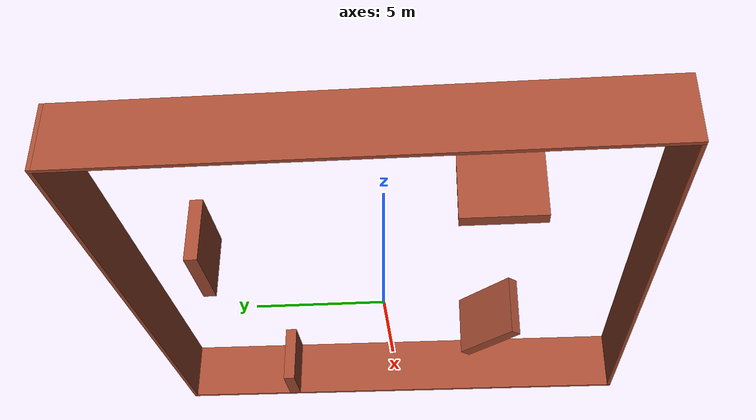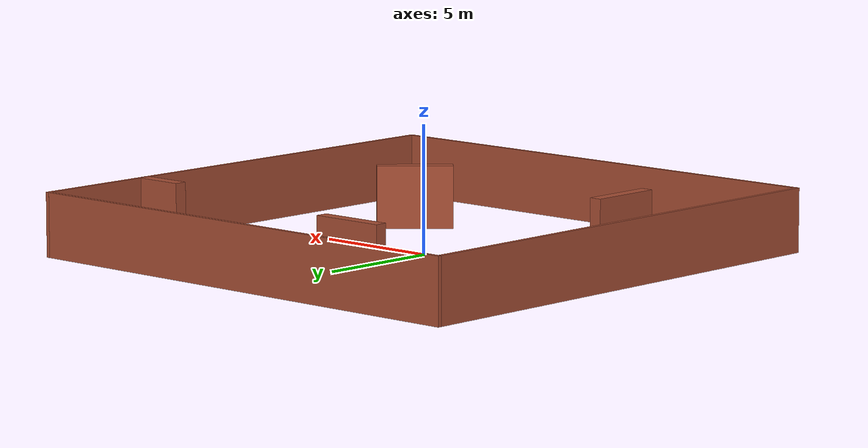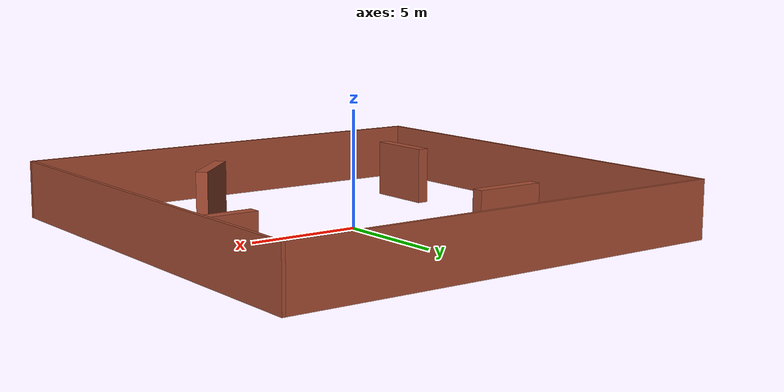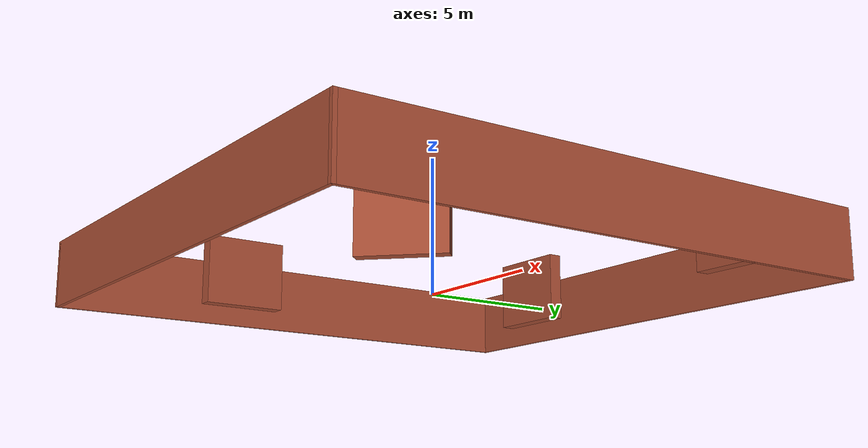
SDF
<?xml version='1.0'?>
<sdf version='1.6'>
  <model name='Indoor20x20'>
    <pose frame=''>0 0 0 0 -0 0</pose>
    <link name='Wall_0'>
      <collision name='Wall_0_Collision'>
        <geometry>
          <box>
            <size>20.15 0.15 2.5</size>
          </box>
        </geometry>
        <pose frame=''>0 0 1.25 0 -0 0</pose>
      </collision>
      <visual name='Wall_0_Visual'>
        <pose frame=''>0 0 1.25 0 -0 0</pose>
        <geometry>
          <box>
            <size>20.15 0.15 2.5</size>
          </box>
        </geometry>
        <material>
          <script>
            <uri>file://media/materials/scripts/gazebo.material</uri>
            <name>Gazebo/Bricks</name>
          </script>
          <ambient>1 1 1 1</ambient>
        </material>
        <meta>
          <layer>0</layer>
        </meta>
      </visual>
      <pose frame=''>0 10 0 0 -0 3.14159</pose>
    </link>
    <link name='Wall_11'>
      <collision name='Wall_11_Collision'>
        <geometry>
          <box>
            <size>3 0.5 2.5</size>
          </box>
        </geometry>
        <pose frame=''>0 0 1.25 0 -0 0</pose>
      </collision>
      <visual name='Wall_11_Visual'>
        <pose frame=''>0 0 1.25 0 -0 0</pose>
        <geometry>
          <box>
            <size>3 0.5 2.5</size>
          </box>
        </geometry>
        <material>
          <script>
            <uri>file://media/materials/scripts/gazebo.material</uri>
            <name>Gazebo/Bricks</name>
          </script>
          <ambient>1 1 1 1</ambient>
        </material>
        <meta>
          <layer>0</layer>
        </meta>
      </visual>
      <pose frame=''>-2.56518 6.61937 0 0 -0 0</pose>
    </link>
    <link name='Wall_15'>
      <collision name='Wall_15_Collision'>
        <geometry>
          <box>
            <size>2 0.5 2.5</size>
          </box>
        </geometry>
        <pose frame=''>0 0 1.25 0 -0 0</pose>
      </collision>
      <visual name='Wall_15_Visual'>
        <pose frame=''>0 0 1.25 0 -0 0</pose>
        <geometry>
          <box>
            <size>2 0.5 2.5</size>
          </box>
        </geometry>
        <material>
          <script>
            <uri>file://media/materials/scripts/gazebo.material</uri>
            <name>Gazebo/Bricks</name>
          </script>
          <ambient>1 1 1 1</ambient>
        </material>
        <meta>
          <layer>0</layer>
        </meta>
      </visual>
      <pose frame=''>8.97432 5.07655 0 0 -0 3.14159</pose>
    </link>
    <link name='Wall_17'>
      <collision name='Wall_17_Collision'>
        <geometry>
          <box>
            <size>3.00033 0.5 2.5</size>
          </box>
        </geometry>
        <pose frame=''>0 0 1.25 0 -0 0</pose>
      </collision>
      <visual name='Wall_17_Visual'>
        <pose frame=''>0 0 1.25 0 -0 0</pose>
        <geometry>
          <box>
            <size>3.00033 0.5 2.5</size>
          </box>
        </geometry>
        <material>
          <script>
            <uri>file://media/materials/scripts/gazebo.material</uri>
            <name>Gazebo/Bricks</name>
          </script>
          <ambient>1 1 1 1</ambient>
        </material>
        <meta>
          <layer>0</layer>
        </meta>
      </visual>
      <pose frame=''>4.41821 -4.22381 0 0 -0 0.785398</pose>
    </link>
    <link name='Wall_2'>
      <collision name='Wall_2_Collision'>
        <geometry>
          <box>
            <size>20.15 0.15 2.5</size>
          </box>
        </geometry>
        <pose frame=''>0 0 1.25 0 -0 0</pose>
      </collision>
      <visual name='Wall_2_Visual'>
        <pose frame=''>0 0 1.25 0 -0 0</pose>
        <geometry>
          <box>
            <size>20.15 0.15 2.5</size>
          </box>
        </geometry>
        <material>
          <script>
            <uri>file://media/materials/scripts/gazebo.material</uri>
            <name>Gazebo/Bricks</name>
          </script>
          <ambient>1 1 1 1</ambient>
        </material>
        <meta>
          <layer>0</layer>
        </meta>
      </visual>
      <pose frame=''>-10 0 0 0 -0 -1.5708</pose>
    </link>
    <link name='Wall_4'>
      <collision name='Wall_4_Collision'>
        <geometry>
          <box>
            <size>20.15 0.15 2.5</size>
          </box>
        </geometry>
        <pose frame=''>0 0 1.25 0 -0 0</pose>
      </collision>
      <visual name='Wall_4_Visual'>
        <pose frame=''>0 0 1.25 0 -0 0</pose>
        <geometry>
          <box>
            <size>20.15 0.15 2.5</size>
          </box>
        </geometry>
        <material>
          <script>
            <uri>file://media/materials/scripts/gazebo.material</uri>
            <name>Gazebo/Bricks</name>
          </script>
          <ambient>1 1 1 1</ambient>
        </material>
        <meta>
          <layer>0</layer>
        </meta>
      </visual>
      <pose frame=''>0 -10 0 0 -0 0</pose>
    </link>
    <link name='Wall_6'>
      <collision name='Wall_6_Collision'>
        <geometry>
          <box>
            <size>20.1502 0.15 2.5</size>
          </box>
        </geometry>
        <pose frame=''>0 0 1.25 0 -0 0</pose>
      </collision>
      <visual name='Wall_6_Visual'>
        <pose frame=''>0 0 1.25 0 -0 0</pose>
        <geometry>
          <box>
            <size>20.1502 0.15 2.5</size>
          </box>
        </geometry>
        <material>
          <script>
            <uri>file://media/materials/scripts/gazebo.material</uri>
            <name>Gazebo/Bricks</name>
          </script>
          <ambient>1 1 1 1</ambient>
        </material>
        <meta>
          <layer>0</layer>
        </meta>
      </visual>
      <pose frame=''>10 0 0 0 -0 -1.5708</pose>
    </link>
    <link name='Wall_8'>
      <collision name='Wall_8_Collision'>
        <geometry>
          <box>
            <size>3 0.5 2.5</size>
          </box>
        </geometry>
        <pose frame=''>0 0 1.25 0 -0 0</pose>
      </collision>
      <visual name='Wall_8_Visual'>
        <pose frame=''>0 0 1.25 0 -0 0</pose>
        <geometry>
          <box>
            <size>3 0.5 2.5</size>
          </box>
        </geometry>
        <material>
          <script>
            <uri>file://media/materials/scripts/gazebo.material</uri>
            <name>Gazebo/Bricks</name>
          </script>
          <ambient>1 1 1 1</ambient>
        </material>
        <meta>
          <layer>0</layer>
        </meta>
      </visual>
      <pose frame=''>-6.0226 -4.4198 0 0 -0 -1.5708</pose>
    </link>
    <static>1</static>
  </model>
</sdf>
